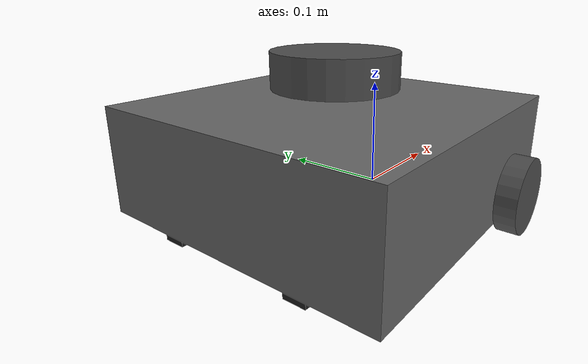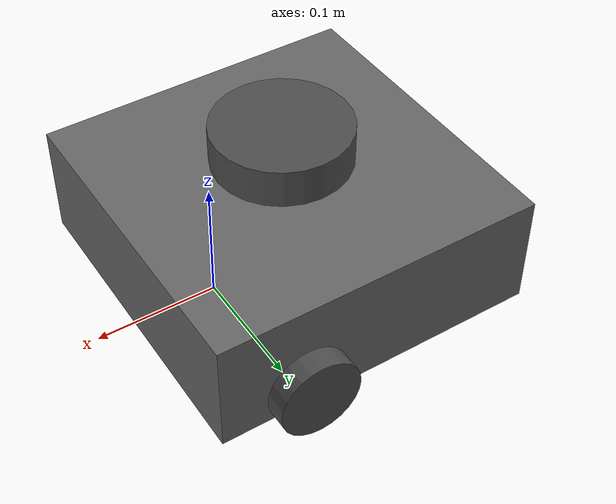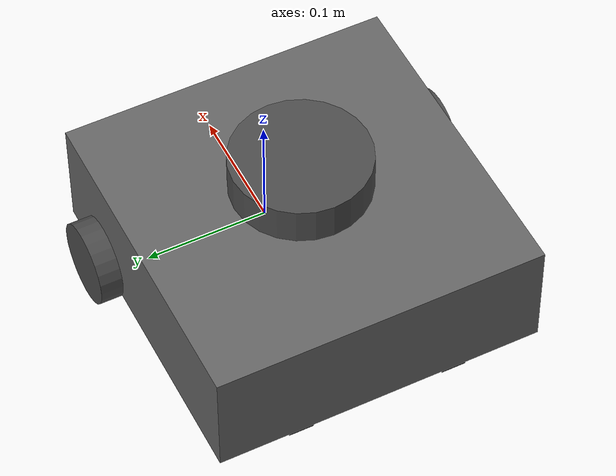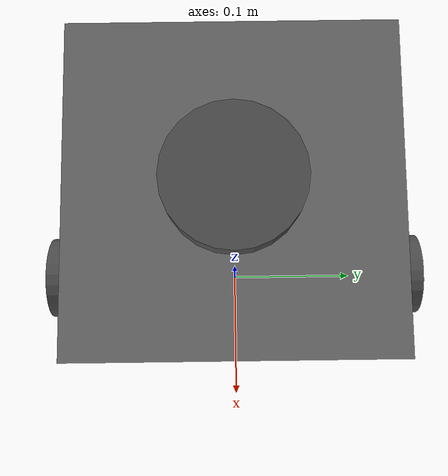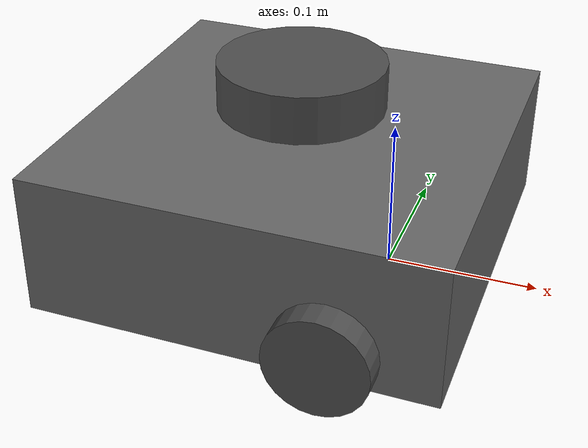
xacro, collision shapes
<?xml version="1.0"?>
<robot name = "turtlebot3_waffle_pi" xmlns:xacro="http://ros.org/wiki/xacro">

  <!-- Init colour -->
  <material name="black">
      <color rgba="0.0 0.0 0.0 1.0"/>
  </material>

  <material name="dark">
    <color rgba="0.3 0.3 0.3 1.0"/>
  </material>

  <material name="light_black">
    <color rgba="0.4 0.4 0.4 1.0"/>
  </material>

    <link name="base_footprint"/>

    <link name="base_link">
             <visual>
                <origin xyz="-0.064 0 0.0" rpy="0 0 0"/>
                <geometry>
                    <mesh filename="file://$(find af_obstacle_avoidance_cpp)/model/meshes/bases/waffle_pi_base.stl" scale="0.001 0.001 0.001"/>
                </geometry>
                <material name="light_black"/>
            </visual>

            <collision>
                <origin xyz="-0.064 0 0.047" rpy="0 0 0"/>
                <geometry>
                    <box size="0.266 0.266 0.094"/>
                </geometry>
            </collision>

            <inertial>
                <origin xyz="0 0 0" rpy="0 0 0"/>
                <mass value="1.3729096e+00"/>
                <inertia ixx="8.7002718e-03" ixy="-4.7576583e-05" ixz="1.1160499e-04"
                        iyy="8.6195418e-03" iyz="-3.5422299e-06"
                        izz="1.4612727e-02" />
            </inertial>
    </link>

    <link name="imu_link">

    </link>

    <link name="base_scan">

        <visual>
            <origin xyz="0 0 0" rpy="0 0 0"/>
            <geometry>
                <mesh filename="file://$(find af_obstacle_avoidance_cpp)/model/meshes/sensors/lds.stl" scale="0.001 0.001 0.001"/>
            </geometry>
            <material name="dark"/>
        </visual>

        <collision>
        <origin xyz="0.0 0 0.0" rpy="0 0 0"/>
        <geometry>
            <cylinder length="0.0315" radius="0.055"/>
        </geometry>
        </collision>

        <inertial>
        <mass value="0.114" />
        <origin xyz="0 0 0" />
        <inertia ixx="0.001" ixy="0.0" ixz="0.0"
                iyy="0.001" iyz="0.0"
                izz="0.001" />
        </inertial>

    </link>

    <link name="wheel_left_link">
        <visual>
            <origin xyz="0 0 0" rpy="1.57 0 0"/>
            <geometry>
                <mesh filename="file://$(find af_obstacle_avoidance_cpp)/model/meshes/wheels/left_tire.stl" scale="0.001 0.001 0.001"/>
            </geometry>
            <material name="dark"/>
        </visual>

        <collision>
            <origin xyz="0 0 0" rpy="0 0 0"/>
            <geometry>
                <cylinder length="0.018" radius="0.033"/>
            </geometry>

        </collision>

        <inertial>
            <origin xyz="0 0 0" />
            <mass value="2.8498940e-02" />
            <inertia ixx="1.1175580e-05" ixy="-4.2369783e-11" ixz="-5.9381719e-09"
                    iyy="1.1192413e-05" iyz="-1.4400107e-11"
                    izz="2.0712558e-05" />
        </inertial>
    </link>

    <link name="wheel_right_link">
         <visual>
            <origin xyz="0 0 0" rpy="1.57 0 0"/>
            <geometry>
                <mesh filename="file://$(find af_obstacle_avoidance_cpp)/model/meshes/wheels/right_tire.stl" scale="0.001 0.001 0.001"/>
            </geometry>
            <material name="dark"/>
        </visual>

        <collision>
            <origin xyz="0 0 0" rpy="0 0 0"/>
            <geometry>
                <cylinder length="0.018" radius="0.033"/>
            </geometry>

        </collision>

        <inertial>
            <origin xyz="0 0 0" />
            <mass value="2.8498940e-02" />
            <inertia ixx="1.1175580e-05" ixy="-4.2369783e-11" ixz="-5.9381719e-09"
                    iyy="1.1192413e-05" iyz="-1.4400107e-11"
                    izz="2.0712558e-05" />
        </inertial>
    </link>

    <link name="caster_back_left_link">
        <collision>
            <origin xyz="0 0.001 0" rpy="0 0 0"/>
            <geometry>
                <box size="0.030 0.009 0.020"/>
            </geometry>

        </collision>

        <inertial>
        <origin xyz="0 0 0" />
        <mass value="0.005" />
        <inertia ixx="0.001" ixy="0.0" ixz="0.0"
                iyy="0.001" iyz="0.0"
                izz="0.001" />
        </inertial>
    </link>

    <link name="caster_back_right_link">
        <collision>
            <origin xyz="0 0.001 0" rpy="0 0 0"/>
            <geometry>
                <box size="0.030 0.009 0.020"/>
            </geometry>

        </collision>

        <inertial>
        <origin xyz="0 0 0" />
        <mass value="0.005" />
        <inertia ixx="0.001" ixy="0.0" ixz="0.0"
                iyy="0.001" iyz="0.0"
                izz="0.001" />
        </inertial>
    </link>

    <link name="camera_link"/>

    <link name="camera_rgb_frame"/>

    <link name="camera_rgb_optical_frame"/>

    <!-- %%%%%%%%%%%%%%%%%%%%%%%%%%%%%% JOINTS%%%%%%%%%%%%%%%%%%%% -->

    <joint name="base_joint" type="fixed">
        <parent link="base_footprint"/>
        <child link="base_link"/>
        <origin xyz="0 0 0" rpy="0 0.01 0"/>
    </joint>

    <joint name="wheel_left_joint" type="continuous">
        <parent link="base_link"/>
        <child link="wheel_left_link"/>
        <origin xyz="0.0 0.144 0.023" rpy="-1.57 0 0"/>
        <axis xyz="0 0 1"/>
    </joint>

   <joint name="wheel_right_joint" type="continuous">
        <parent link="base_link"/>
        <child link="wheel_right_link"/>
        <origin xyz="0.0 -0.144 0.023" rpy="-1.57 0 0"/>
        <axis xyz="0 0 1"/>
    </joint>

   <joint name='caster_back_right_joint' type='fixed'>
        <parent link="base_link"/>
        <child link="caster_back_right_link"/>
        <origin xyz="-0.177 -0.064 -0.004" rpy="-1.57 0 0"/>

    </joint>

   <joint name='caster_back_left_joint' type='fixed'>
        <parent link="base_link"/>
        <child link="caster_back_left_link"/>
        <origin xyz="-0.177 0.064 -0.004" rpy="-1.57 0 0"/>
    </joint>

    <joint name="imu_joint" type="fixed">
        <parent link="base_link"/>
        <child link="imu_link"/>
        <origin xyz="-0.032 0 0.068 " rpy="0 0 0"/>
        <axis xyz="0 0 1"/>
    </joint>

    <joint name="lidar_joint" type="fixed">
        <parent link="base_link"/>
        <child link="base_scan"/>
        <origin xyz="-0.064 0 0.121" rpy="0 0 0"/>
        <axis xyz="0 0 1"/>
    </joint>

    <joint name="camera_joint" type="fixed">
        <parent link="base_link"/>
        <child link="camera_link"/>
        <origin xyz="0.073 -0.011 0.084" rpy="0 0 0"/>
    </joint>

    <joint name="camera_rgb_joint" type="fixed">
        <parent link="camera_link"/>
        <child link="camera_rgb_frame"/>
        <origin xyz="0.003 0.011 0.009" rpy="0 0 0"/>
    </joint>

  <joint name="camera_rgb_optical_joint" type="fixed">
    <origin xyz="0 0 0" rpy="-1.57 0 0"/>
    <parent link="camera_rgb_frame"/>
    <child link="camera_rgb_optical_frame"/>
  </joint>

<!-- %%%%%%%%%%%%%%%%%%%%%%%%%%%% gazebo tag %%%%%%%%%%%%%%%%%%%%%%%%%%%% -->

    <!-- Publish odom and base_footprint in tf topic  -->
    <gazebo>
        <plugin name="turtlebot3_diff_drive" filename="libgazebo_ros_diff_drive.so">

            <ros>
            </ros>

            <update_rate>30</update_rate>

            <!-- wheels -->
            <left_joint>wheel_left_joint</left_joint>
            <right_joint>wheel_right_joint</right_joint>

            <!-- kinematics -->
            <wheel_separation>0.287</wheel_separation>
            <wheel_diameter>0.066</wheel_diameter>

            <!-- limits -->
            <max_wheel_torque>10</max_wheel_torque>
            <max_wheel_acceleration>1.0</max_wheel_acceleration>

            <command_topic>cmd_vel</command_topic>

            <!-- output -->
            <publish_odom>true</publish_odom>
            <publish_odom_tf>true</publish_odom_tf>
            <publish_wheel_tf>false</publish_wheel_tf>

            <odometry_topic>odom</odometry_topic>
            <odometry_frame>odom</odometry_frame>
            <robot_base_frame>base_footprint</robot_base_frame>

        </plugin>
    </gazebo>

    <!-- To publish other frames besides odom and base_footprint to publish their tf transforms in the tf topic  -->
    <!-- I guess this is new in ros 2 and in ros 1 we didn't have to specify this explicitly  -->
    <gazebo>
        <plugin name="turtlebot3_joint_state" filename="libgazebo_ros_joint_state_publisher.so">
            <ros>
                <remapping>~/out:=joint_states</remapping>
            </ros>
            <update_rate>30</update_rate>
            <joint_name>wheel_left_joint</joint_name>
            <joint_name>wheel_right_joint</joint_name>
        </plugin>
    </gazebo>

  <gazebo reference="base_link">
    <material>Gazebo/DarkGrey</material>
  </gazebo>

  <gazebo reference="wheel_left_link">
    <mu1>0.1</mu1>
    <mu2>0.1</mu2>
    <kp>500000.0</kp>
    <kd>10.0</kd>
    <minDepth>0.001</minDepth>
    <maxVel>0.1</maxVel>
    <fdir1>1 0 0</fdir1>
    <material>Gazebo/FlatBlack</material>
  </gazebo>

  <gazebo reference="wheel_right_link">
    <mu1>0.1</mu1>
    <mu2>0.1</mu2>
    <kp>500000.0</kp>
    <kd>10.0</kd>
    <minDepth>0.001</minDepth>
    <maxVel>0.1</maxVel>
    <fdir1>1 0 0</fdir1>
    <material>Gazebo/FlatBlack</material>
  </gazebo>

  <gazebo reference="caster_back_right_link">
    <mu1>0.1</mu1>
    <mu2>0.1</mu2>
    <kp>1000000.0</kp>
    <kd>100.0</kd>
    <minDepth>0.001</minDepth>
    <maxVel>1.0</maxVel>
    <material>Gazebo/FlatBlack</material>
  </gazebo>

  <gazebo reference="caster_back_left_link">
    <mu1>0.1</mu1>
    <mu2>0.1</mu2>
    <kp>1000000.0</kp>
    <kd>100.0</kd>
    <minDepth>0.001</minDepth>
    <maxVel>1.0</maxVel>
    <material>Gazebo/FlatBlack</material>
  </gazebo>

    <!-- in the scan topic -->
    <gazebo reference="base_scan">
        <material value="Gazebo/FlatBlack"/>
       <sensor name="hls_lfcd_lds" type="ray">
            <always_on>true</always_on>
            <visualize>true</visualize>
            <pose>-0.064 0 0.121 0 0 0</pose>
            <update_rate>5</update_rate>
            <ray>
            <scan>
                <horizontal>
                <samples>360</samples>
                <resolution>1.000000</resolution>
                <min_angle>0.000000</min_angle>
                <max_angle>6.280000</max_angle>
                </horizontal>
            </scan>
            <range>
                <min>0.120000</min>
                <max>3.5</max>
                <resolution>0.015000</resolution>
            </range>
            <noise>
                <type>gaussian</type>
                <mean>0.0</mean>
                <stddev>0.01</stddev>
            </noise>
            </ray>
            <plugin name="turtlebot3_laserscan" filename="libgazebo_ros_ray_sensor.so">
            <ros>
                <remapping>~/out:=scan</remapping>
            </ros>
            <output_type>sensor_msgs/LaserScan</output_type>
            <frame_name>base_scan</frame_name>
            </plugin>
        </sensor>
    </gazebo>

    <!-- linear acceleration on imu topic -->
    <gazebo reference="imu_link">
        <sensor name="tb3_imu" type="imu">
                    <always_on>true</always_on>
                    <update_rate>200</update_rate>
                    <imu>
                    <angular_velocity>
                        <x>
                        <noise type="gaussian">
                            <mean>0.0</mean>
                            <stddev>2e-4</stddev>
                        </noise>
                        </x>
                        <y>
                        <noise type="gaussian">
                            <mean>0.0</mean>
                            <stddev>2e-4</stddev>
                        </noise>
                        </y>
                        <z>
                        <noise type="gaussian">
                            <mean>0.0</mean>
                            <stddev>2e-4</stddev>
                        </noise>
                        </z>
                    </angular_velocity>
                    <linear_acceleration>
                        <x>
                        <noise type="gaussian">
                            <mean>0.0</mean>
                            <stddev>1.7e-2</stddev>
                        </noise>
                        </x>
                        <y>
                        <noise type="gaussian">
                            <mean>0.0</mean>
                            <stddev>1.7e-2</stddev>
                        </noise>
                        </y>
                        <z>
                        <noise type="gaussian">
                            <mean>0.0</mean>
                            <stddev>1.7e-2</stddev>
                        </noise>
                        </z>
                    </linear_acceleration>
                    </imu>
                    <plugin name="turtlebot3_imu" filename="libgazebo_ros_imu_sensor.so">
                    <ros>
                        <remapping>~/out:=imu</remapping>
                    </ros>
                    </plugin>
            </sensor>
    </gazebo>

    <gazebo reference="camera_rgb_optical_frame">
      <inertial>
        <pose>0.076 0.0 0.093 0 0 0</pose>
        <inertia>
          <ixx>0.001</ixx>
          <ixy>0.000</ixy>
          <ixz>0.000</ixz>
          <iyy>0.001</iyy>
          <iyz>0.000</iyz>
          <izz>0.001</izz>
        </inertia>
        <mass>0.035</mass>
      </inertial>

      <pose>0.076 0.0 0.093 0 0 0</pose>
        <sensor name="camera" type="camera">
                <always_on>true</always_on>
                <visualize>true</visualize>
                <update_rate>30</update_rate>
                <camera name="picam">
                <horizontal_fov>1.085595</horizontal_fov>
                <image>
                    <width>640</width>
                    <height>480</height>
                    <format>R8G8B8</format>
                </image>
                <clip>
                    <near>0.03</near>
                    <far>100</far>
                </clip>
                <noise>
                    <type>gaussian</type>
                    <mean>0.0</mean>
                    <stddev>0.007</stddev>
                </noise>
                </camera>
                <plugin name="camera_driver" filename="libgazebo_ros_camera.so">
                    <ros>
                    </ros>
                </plugin>
            </sensor>
    </gazebo>

</robot>
